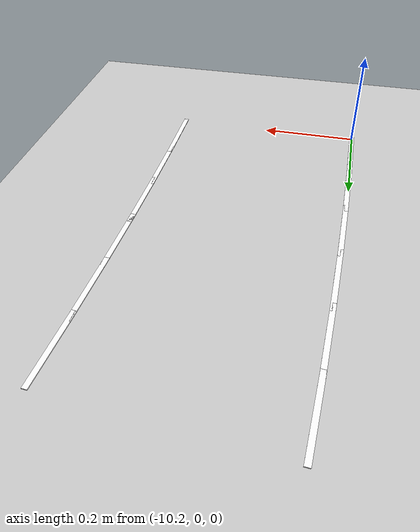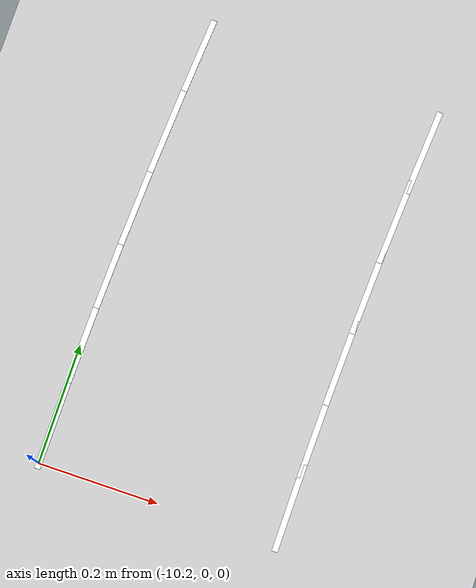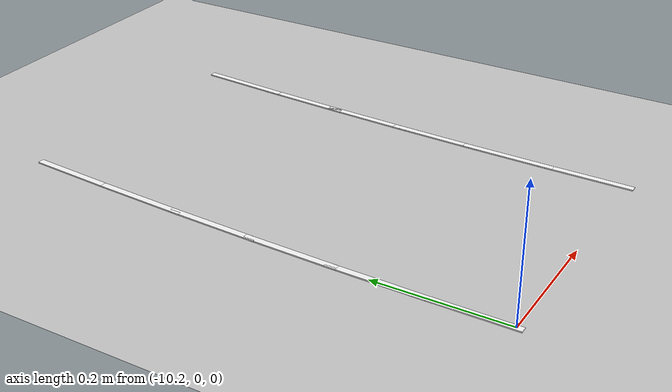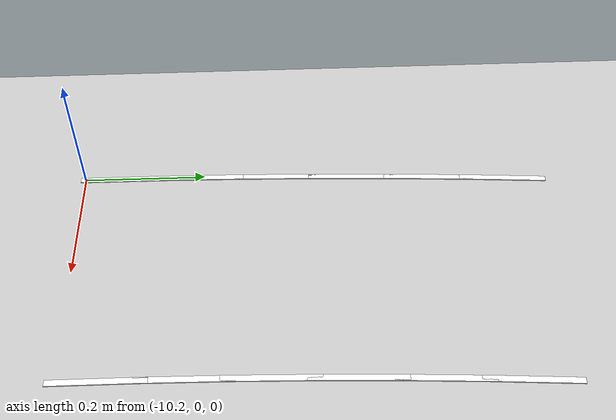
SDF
<sdf version="1.7">
 <world name="default">
  <model name="ground_plane">
   <static>1</static>
   <link name="link">
    <collision name="collision">
     <geometry><plane><normal>0 0 1</normal><size>100 100</size></plane></geometry>
     <surface>
      <contact><collide_bitmask>65535</collide_bitmask></contact>
      <friction><ode><mu>100</mu><mu2>50</mu2></ode></friction>
     </surface>
    </collision>
    <visual name="visual">
     <cast_shadows>0</cast_shadows>
     <geometry><plane><normal>0 0 1</normal><size>100 100</size></plane></geometry>
     <material>
      <script><uri>file://media/materials/scripts/gazebo.material</uri><name>Gazebo/Grey</name></script>
     </material>
    </visual>
   </link>
  </model>
  <model name="lane_line_left_244">
   <static>1</static>
   <link name="link">
    <pose>0 0 -0.004 0 -0 0</pose>
    <visual name="visual">
     <geometry><box><size>0.1457 0.01 0.01</size></box></geometry>
     <material><ambient>1 1 1 1</ambient><diffuse>1 1 1 1</diffuse></material>
    </visual>
    <collision name="collision"><geometry><box><size>0.1457 0.01 0.01</size></box></geometry></collision>
   </link>
   <pose>-9.77641 0.676775 0 0 0 -1.63991</pose>
  </model>
  <model name="lane_line_right_244">
   <static>1</static>
   <link name="link">
    <pose>0 0 -0.004 0 -0 0</pose>
    <visual name="visual">
     <geometry><box><size>0.1457 0.01 0.01</size></box></geometry>
     <material><ambient>1 1 1 1</ambient><diffuse>1 1 1 1</diffuse></material>
    </visual>
    <collision name="collision"><geometry><box><size>0.1457 0.01 0.01</size></box></geometry></collision>
   </link>
   <pose>-10.1755 0.704399 0 0 0 -1.63991</pose>
  </model>
  <model name="lane_line_left_245">
   <static>1</static>
   <link name="link">
    <pose>0 0 -0.004 0 -0 0</pose>
    <visual name="visual">
     <geometry><box><size>0.1457 0.01 0.01</size></box></geometry>
     <material><ambient>1 1 1 1</ambient><diffuse>1 1 1 1</diffuse></material>
    </visual>
    <collision name="collision"><geometry><box><size>0.1457 0.01 0.01</size></box></geometry></collision>
   </link>
   <pose>-9.78414 0.55387 0 0 0 -1.62734</pose>
  </model>
  <model name="lane_line_right_245">
   <static>1</static>
   <link name="link">
    <pose>0 0 -0.004 0 -0 0</pose>
    <visual name="visual">
     <geometry><box><size>0.1457 0.01 0.01</size></box></geometry>
     <material><ambient>1 1 1 1</ambient><diffuse>1 1 1 1</diffuse></material>
    </visual>
    <collision name="collision"><geometry><box><size>0.1457 0.01 0.01</size></box></geometry></collision>
   </link>
   <pose>-10.1835 0.576478 0 0 0 -1.62734</pose>
  </model>
  <model name="lane_line_left_246">
   <static>1</static>
   <link name="link">
    <pose>0 0 -0.004 0 -0 0</pose>
    <visual name="visual">
     <geometry><box><size>0.1457 0.01 0.01</size></box></geometry>
     <material><ambient>1 1 1 1</ambient><diffuse>1 1 1 1</diffuse></material>
    </visual>
    <collision name="collision"><geometry><box><size>0.1457 0.01 0.01</size></box></geometry></collision>
   </link>
   <pose>-9.79033 0.430879 0 0 0 -1.61478</pose>
  </model>
  <model name="lane_line_right_246">
   <static>1</static>
   <link name="link">
    <pose>0 0 -0.004 0 -0 0</pose>
    <visual name="visual">
     <geometry><box><size>0.1457 0.01 0.01</size></box></geometry>
     <material><ambient>1 1 1 1</ambient><diffuse>1 1 1 1</diffuse></material>
    </visual>
    <collision name="collision"><geometry><box><size>0.1457 0.01 0.01</size></box></geometry></collision>
   </link>
   <pose>-10.1899 0.448466 0 0 0 -1.61478</pose>
  </model>
  <model name="lane_line_left_247">
   <static>1</static>
   <link name="link">
    <pose>0 0 -0.004 0 -0 0</pose>
    <visual name="visual">
     <geometry><box><size>0.1457 0.01 0.01</size></box></geometry>
     <material><ambient>1 1 1 1</ambient><diffuse>1 1 1 1</diffuse></material>
    </visual>
    <collision name="collision"><geometry><box><size>0.1457 0.01 0.01</size></box></geometry></collision>
   </link>
   <pose>-9.79497 0.307819 0 0 0 -1.60221</pose>
  </model>
  <model name="lane_line_right_247">
   <static>1</static>
   <link name="link">
    <pose>0 0 -0.004 0 -0 0</pose>
    <visual name="visual">
     <geometry><box><size>0.1457 0.01 0.01</size></box></geometry>
     <material><ambient>1 1 1 1</ambient><diffuse>1 1 1 1</diffuse></material>
    </visual>
    <collision name="collision"><geometry><box><size>0.1457 0.01 0.01</size></box></geometry></collision>
   </link>
   <pose>-10.1948 0.320384 0 0 0 -1.60221</pose>
  </model>
  <model name="lane_line_left_248">
   <static>1</static>
   <link name="link">
    <pose>0 0 -0.004 0 -0 0</pose>
    <visual name="visual">
     <geometry><box><size>0.1457 0.01 0.01</size></box></geometry>
     <material><ambient>1 1 1 1</ambient><diffuse>1 1 1 1</diffuse></material>
    </visual>
    <collision name="collision"><geometry><box><size>0.1457 0.01 0.01</size></box></geometry></collision>
   </link>
   <pose>-9.79806 0.184711 0 0 0 -1.58965</pose>
  </model>
  <model name="lane_line_right_248">
   <static>1</static>
   <link name="link">
    <pose>0 0 -0.004 0 -0 0</pose>
    <visual name="visual">
     <geometry><box><size>0.1457 0.01 0.01</size></box></geometry>
     <material><ambient>1 1 1 1</ambient><diffuse>1 1 1 1</diffuse></material>
    </visual>
    <collision name="collision"><geometry><box><size>0.1457 0.01 0.01</size></box></geometry></collision>
   </link>
   <pose>-10.198 0.19225 0 0 0 -1.58965</pose>
  </model>
  <model name="lane_line_left_249">
   <static>1</static>
   <link name="link">
    <pose>0 0 -0.004 0 -0 0</pose>
    <visual name="visual">
     <geometry><box><size>0.1457 0.01 0.01</size></box></geometry>
     <material><ambient>1 1 1 1</ambient><diffuse>1 1 1 1</diffuse></material>
    </visual>
    <collision name="collision"><geometry><box><size>0.1457 0.01 0.01</size></box></geometry></collision>
   </link>
   <pose>-9.79961 0.061574 0 0 0 -1.57708</pose>
  </model>
  <model name="lane_line_right_249">
   <static>1</static>
   <link name="link">
    <pose>0 0 -0.004 0 -0 0</pose>
    <visual name="visual">
     <geometry><box><size>0.1457 0.01 0.01</size></box></geometry>
     <material><ambient>1 1 1 1</ambient><diffuse>1 1 1 1</diffuse></material>
    </visual>
    <collision name="collision"><geometry><box><size>0.1457 0.01 0.01</size></box></geometry></collision>
   </link>
   <pose>-10.1996 0.064087 0 0 0 -1.57708</pose>
  </model>
 </world>
</sdf>
